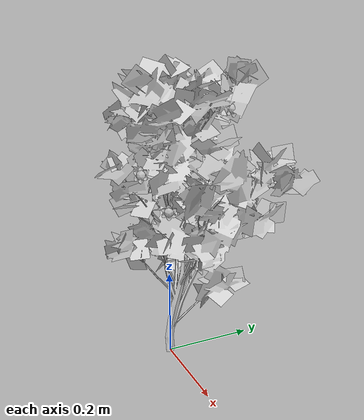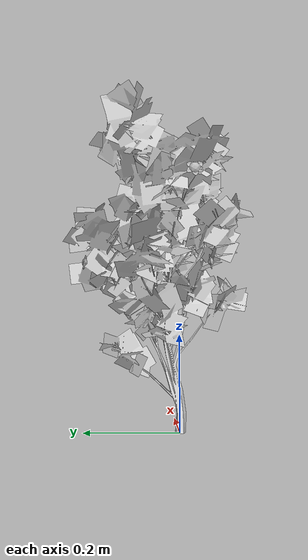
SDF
<!--  skew 1-->
<?xml version="1.0"?>
<sdf version="1.6">
  <model name="tree-flowers">
    <static>true</static>
    <link name="link"></link>

    <include>
      <uri>model://tree-mesh</uri>
      <pose>0 0 0 0 0 0</pose>
    </include>
    <joint name="tree_joint" type="fixed">
      <child>tree-mesh::link</child>
      <parent>link</parent>
    </joint>

    <include>
      <name>bramble_0</name>
      <uri>model://bramble</uri>
      <pose>0.107537 -0.046881 0.402327 -1.00423 1.504 -1.45072</pose>
    </include>
    <include>
      <name>bramble_1</name>
      <uri>model://bramble</uri>
      <pose>-0.058506 -0.057965 0.348676 1.46057 -0.026669 -0.236442</pose>
    </include>
    <include>
      <name>bramble_2</name>
      <uri>model://bramble</uri>
      <pose>0.015803 0.202531 0.358288 -1.42731 0 0</pose>
    </include>
    <include>
      <name>bramble_3</name>
      <uri>model://bramble</uri>
      <pose>0.067876 -0.089279 0.474349 1.08554 0.353465 0.580889</pose>
    </include>
    <include>
      <name>bramble_4</name>
      <uri>model://bramble</uri>
      <pose>-0.198057 -0.016410 0.499770 0 -1.49206 0</pose>
    </include>
    <include>
      <name>bramble_5</name>
      <uri>model://bramble</uri>
      <pose>0.087757 0.104908 0.596102 0 1.49055 0</pose>
    </include>

    <joint name="flower_joint_0" type="fixed">
      <child>bramble_0::flower_link</child>
      <parent>link</parent>
    </joint>
    <joint name="flower_joint_1" type="fixed">
      <child>bramble_1::flower_link</child>
      <parent>link</parent>
    </joint>
    <joint name="flower_joint_2" type="fixed">
      <child>bramble_2::flower_link</child>
      <parent>link</parent>
    </joint>
    <joint name="flower_joint_3" type="fixed">
      <child>bramble_3::flower_link</child>
      <parent>link</parent>
    </joint>
    <joint name="flower_joint_4" type="fixed">
      <child>bramble_4::flower_link</child>
      <parent>link</parent>
    </joint>
    <joint name="flower_joint_5" type="fixed">
      <child>bramble_5::flower_link</child>
      <parent>link</parent>
    </joint>

  </model>
</sdf>

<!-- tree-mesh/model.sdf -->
<sdf version="1.6">
  <model name="tree-mesh">
    <static>true</static>
    <link name="link">

      <collision name="collision">
        <geometry>
          <mesh>
            <uri>model://tree-mesh/meshes/new_tree.dae</uri>
            <scale>0.0625 0.0625 0.0625</scale>
          </mesh>
        </geometry>
      </collision>

      <!-- simplified collision for sake of speed since leaves shouldn't be blocking anyway -->

      <visual name="leaves">
        <geometry>
          <mesh>
            <uri>model://tree-mesh/meshes/leaves.dae</uri>
            <scale>0.0325 0.0325 0.0325</scale>
          </mesh>
        </geometry>
        <material>
          <script>
            <uri>model://tree-mesh/materials/scripts/</uri>
            <uri>model://tree-mesh/materials/textures/</uri>
            <name>NewTree/Branch</name>
          </script>
        </material>
      </visual>
      <visual name="bark">
        <geometry>
          <mesh>
            <uri>model://tree-mesh/meshes/bark.dae</uri>
            <scale>0.0325 0.0325 0.0325</scale>
          </mesh>
        </geometry>
        <material>
          <script>
            <uri>model://tree-mesh/materials/scripts/</uri>
            <uri>model://tree-mesh/materials/textures/</uri>
            <name>NewTree/Bark</name>
          </script>
        </material>
      </visual>
    </link>
  </model>
</sdf>

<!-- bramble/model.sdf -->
<sdf version="1.6">
  <model name="bramble">
    <static>true</static>
    <link name="flower_link">
      <collision name="body_collision">
        <geometry>
          <mesh>
            <uri>model://bramble/meshes/bramble.dae</uri>
            <scale>0.2 0.2 0.2</scale>
          </mesh>
        </geometry>
      </collision>
      <visual name="petals">
        <geometry>
          <mesh>
            <uri>model://bramble/meshes/bramble.dae</uri>
            <scale>0.2 0.2 0.2</scale>
            <submesh>
              <name>petal</name>
            </submesh>
          </mesh>
        </geometry>
        <material>
          <script>
            <uri>model://bramble/materials/scripts/</uri>
            <uri>model://bramble/materials/textures/</uri>
            <name>Bramble/Petal</name>
          </script>
        </material>
      </visual>
      <visual name="carpel">
        <geometry>
          <mesh>
            <uri>model://bramble/meshes/bramble.dae</uri>
            <scale>0.2 0.2 0.2</scale>
            <submesh>
              <name>carpel</name>
            </submesh>
          </mesh>
        </geometry>
        <material>
          <script>
            <uri>model://bramble/materials/scripts/</uri>
            <uri>model://bramble/materials/textures/</uri>
            <name>Bramble/Carpel</name>
          </script>
        </material>
      </visual>
      <visual name="stamen">
        <geometry>
          <mesh>
            <uri>model://bramble/meshes/bramble.dae</uri>
            <scale>0.2 0.2 0.2</scale>
            <submesh>
              <name>stamen</name>
            </submesh>
          </mesh>
        </geometry>
        <material>
          <script>
            <uri>model://bramble/materials/scripts/</uri>
            <uri>model://bramble/materials/textures/</uri>
            <name>Bramble/Stamen</name>
          </script>
        </material>
      </visual>
    </link>
  </model>
</sdf>
